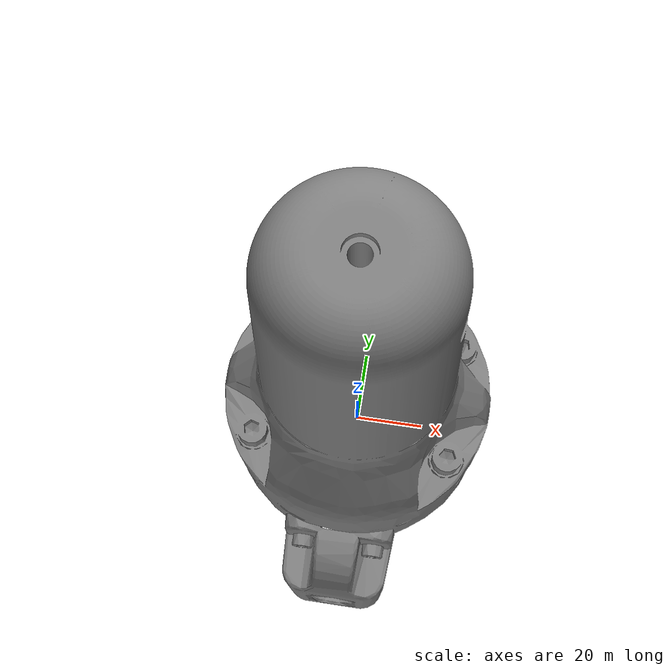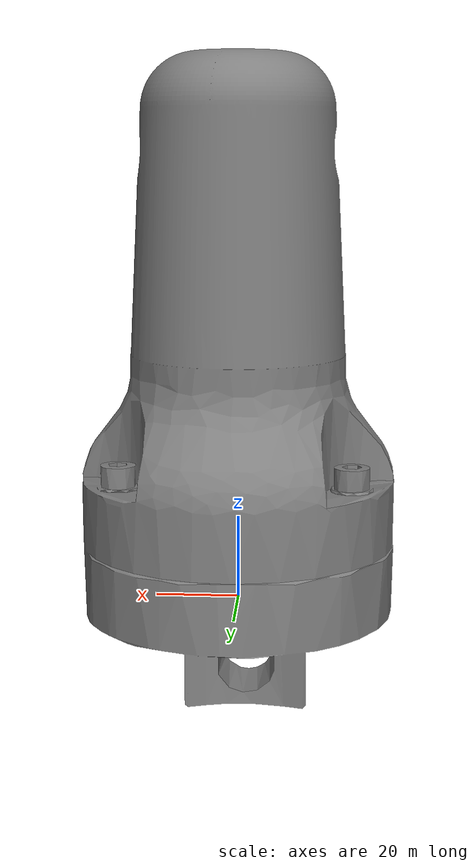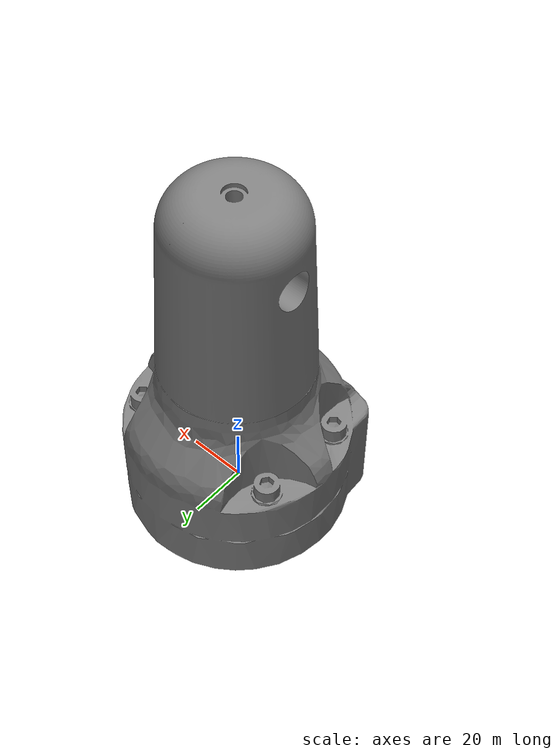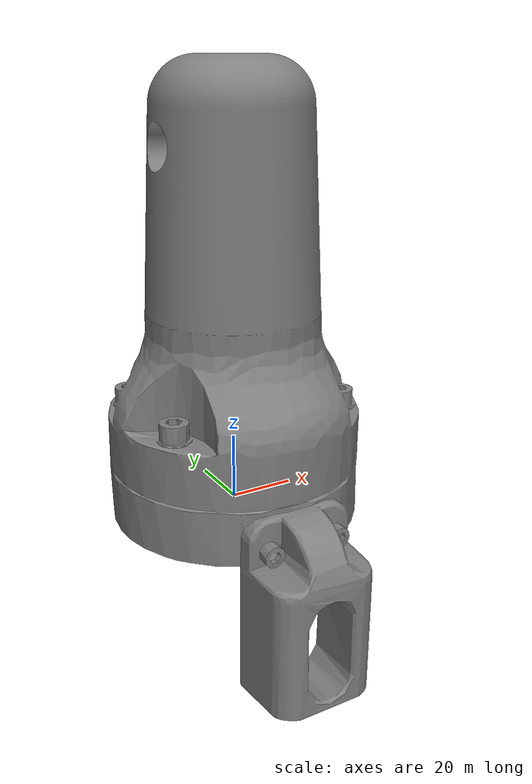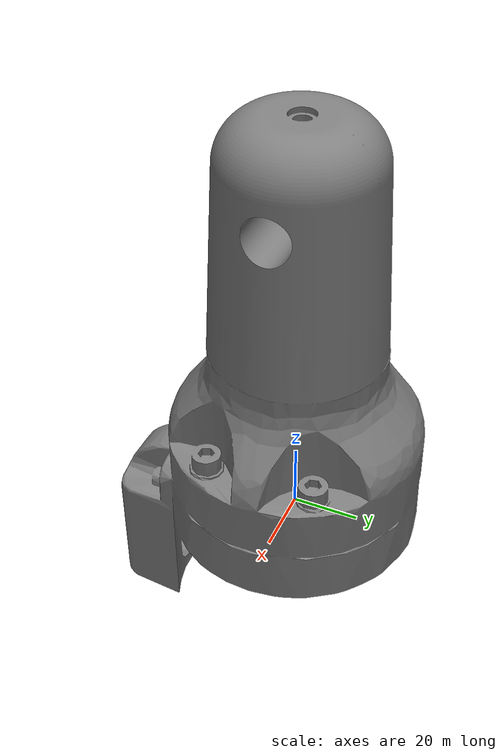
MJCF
<mujoco model="holder">
  <default>
    <default class="visual">
      <geom group="2" type="mesh" contype="0" conaffinity="0"/>
    </default>
    <default class="collision">
      <geom group="3" type="mesh"/>
    </default>
  </default>
  <asset>
    <mesh file="holder.obj"/>
    <mesh file="holder_collision_0.obj"/>
    <mesh file="holder_collision_1.obj"/>
    <mesh file="holder_collision_2.obj"/>
    <mesh file="holder_collision_3.obj"/>
    <mesh file="holder_collision_4.obj"/>
    <mesh file="holder_collision_5.obj"/>
    <mesh file="holder_collision_6.obj"/>
    <mesh file="holder_collision_7.obj"/>
    <mesh file="holder_collision_8.obj"/>
    <mesh file="holder_collision_9.obj"/>
    <mesh file="holder_collision_10.obj"/>
    <mesh file="holder_collision_11.obj"/>
    <mesh file="holder_collision_12.obj"/>
    <mesh file="holder_collision_13.obj"/>
    <mesh file="holder_collision_14.obj"/>
    <mesh file="holder_collision_15.obj"/>
    <mesh file="holder_collision_16.obj"/>
    <mesh file="holder_collision_17.obj"/>
    <mesh file="holder_collision_18.obj"/>
    <mesh file="holder_collision_19.obj"/>
    <mesh file="holder_collision_20.obj"/>
    <mesh file="holder_collision_21.obj"/>
    <mesh file="holder_collision_22.obj"/>
    <mesh file="holder_collision_23.obj"/>
    <mesh file="holder_collision_24.obj"/>
    <mesh file="holder_collision_25.obj"/>
    <mesh file="holder_collision_26.obj"/>
    <mesh file="holder_collision_27.obj"/>
    <mesh file="holder_collision_28.obj"/>
    <mesh file="holder_collision_29.obj"/>
    <mesh file="holder_collision_30.obj"/>
    <mesh file="holder_collision_31.obj"/>
    <mesh file="holder_collision_32.obj"/>
    <mesh file="holder_collision_33.obj"/>
    <mesh file="holder_collision_34.obj"/>
    <mesh file="holder_collision_35.obj"/>
    <mesh file="holder_collision_36.obj"/>
    <mesh file="holder_collision_37.obj"/>
    <mesh file="holder_collision_38.obj"/>
    <mesh file="holder_collision_39.obj"/>
    <mesh file="holder_collision_40.obj"/>
    <mesh file="holder_collision_41.obj"/>
    <mesh file="holder_collision_42.obj"/>
    <mesh file="holder_collision_43.obj"/>
    <mesh file="holder_collision_44.obj"/>
    <mesh file="holder_collision_45.obj"/>
    <mesh file="holder_collision_46.obj"/>
    <mesh file="holder_collision_47.obj"/>
    <mesh file="holder_collision_48.obj"/>
    <mesh file="holder_collision_49.obj"/>
    <mesh file="holder_collision_50.obj"/>
    <mesh file="holder_collision_51.obj"/>
    <mesh file="holder_collision_52.obj"/>
    <mesh file="holder_collision_53.obj"/>
    <mesh file="holder_collision_54.obj"/>
    <mesh file="holder_collision_55.obj"/>
    <mesh file="holder_collision_56.obj"/>
    <mesh file="holder_collision_57.obj"/>
    <mesh file="holder_collision_58.obj"/>
    <mesh file="holder_collision_59.obj"/>
    <mesh file="holder_collision_60.obj"/>
    <mesh file="holder_collision_61.obj"/>
    <mesh file="holder_collision_62.obj"/>
    <mesh file="holder_collision_63.obj"/>
    <mesh file="holder_collision_64.obj"/>
    <mesh file="holder_collision_65.obj"/>
    <mesh file="holder_collision_66.obj"/>
    <mesh file="holder_collision_67.obj"/>
    <mesh file="holder_collision_68.obj"/>
    <mesh file="holder_collision_69.obj"/>
    <mesh file="holder_collision_70.obj"/>
    <mesh file="holder_collision_71.obj"/>
    <mesh file="holder_collision_72.obj"/>
    <mesh file="holder_collision_73.obj"/>
    <mesh file="holder_collision_74.obj"/>
    <mesh file="holder_collision_75.obj"/>
    <mesh file="holder_collision_76.obj"/>
    <mesh file="holder_collision_77.obj"/>
    <mesh file="holder_collision_78.obj"/>
    <mesh file="holder_collision_79.obj"/>
    <mesh file="holder_collision_80.obj"/>
    <mesh file="holder_collision_81.obj"/>
    <mesh file="holder_collision_82.obj"/>
    <mesh file="holder_collision_83.obj"/>
    <mesh file="holder_collision_84.obj"/>
    <mesh file="holder_collision_85.obj"/>
    <mesh file="holder_collision_86.obj"/>
    <mesh file="holder_collision_87.obj"/>
    <mesh file="holder_collision_88.obj"/>
    <mesh file="holder_collision_89.obj"/>
    <mesh file="holder_collision_90.obj"/>
    <mesh file="holder_collision_91.obj"/>
    <mesh file="holder_collision_92.obj"/>
    <mesh file="holder_collision_93.obj"/>
    <mesh file="holder_collision_94.obj"/>
    <mesh file="holder_collision_95.obj"/>
    <mesh file="holder_collision_96.obj"/>
    <mesh file="holder_collision_97.obj"/>
    <mesh file="holder_collision_98.obj"/>
    <mesh file="holder_collision_99.obj"/>
    <mesh file="holder_collision_100.obj"/>
    <mesh file="holder_collision_101.obj"/>
    <mesh file="holder_collision_102.obj"/>
    <mesh file="holder_collision_103.obj"/>
    <mesh file="holder_collision_104.obj"/>
    <mesh file="holder_collision_105.obj"/>
    <mesh file="holder_collision_106.obj"/>
    <mesh file="holder_collision_107.obj"/>
    <mesh file="holder_collision_108.obj"/>
    <mesh file="holder_collision_109.obj"/>
    <mesh file="holder_collision_110.obj"/>
    <mesh file="holder_collision_111.obj"/>
    <mesh file="holder_collision_112.obj"/>
    <mesh file="holder_collision_113.obj"/>
    <mesh file="holder_collision_114.obj"/>
    <mesh file="holder_collision_115.obj"/>
    <mesh file="holder_collision_116.obj"/>
    <mesh file="holder_collision_117.obj"/>
    <mesh file="holder_collision_118.obj"/>
    <mesh file="holder_collision_119.obj"/>
    <mesh file="holder_collision_120.obj"/>
    <mesh file="holder_collision_121.obj"/>
    <mesh file="holder_collision_122.obj"/>
    <mesh file="holder_collision_123.obj"/>
    <mesh file="holder_collision_124.obj"/>
    <mesh file="holder_collision_125.obj"/>
    <mesh file="holder_collision_126.obj"/>
    <mesh file="holder_collision_127.obj"/>
    <mesh file="holder_collision_128.obj"/>
    <mesh file="holder_collision_129.obj"/>
    <mesh file="holder_collision_130.obj"/>
    <mesh file="holder_collision_131.obj"/>
    <mesh file="holder_collision_132.obj"/>
    <mesh file="holder_collision_133.obj"/>
    <mesh file="holder_collision_134.obj"/>
    <mesh file="holder_collision_135.obj"/>
    <mesh file="holder_collision_136.obj"/>
    <mesh file="holder_collision_137.obj"/>
    <mesh file="holder_collision_138.obj"/>
    <mesh file="holder_collision_139.obj"/>
    <mesh file="holder_collision_140.obj"/>
    <mesh file="holder_collision_141.obj"/>
    <mesh file="holder_collision_142.obj"/>
    <mesh file="holder_collision_143.obj"/>
    <mesh file="holder_collision_144.obj"/>
    <mesh file="holder_collision_145.obj"/>
    <mesh file="holder_collision_146.obj"/>
  </asset>
  <worldbody>
    <body name="holder">
      <geom mesh="holder" class="visual"/>
      <geom mesh="holder_collision_0" rgba="0.9339782848675405 0.12709095613723898 0.7119345025486067 1" class="collision"/>
      <geom mesh="holder_collision_1" rgba="0.316414725344241 0.5057956580910649 0.10700339626405586 1" class="collision"/>
      <geom mesh="holder_collision_2" rgba="0.0005544586052781408 0.911610629843216 0.032379903216019024 1" class="collision"/>
      <geom mesh="holder_collision_3" rgba="0.49505799505723025 0.9542301545849325 0.39807618094186126 1" class="collision"/>
      <geom mesh="holder_collision_4" rgba="0.23930554614025235 0.07074047233602909 0.047257611779816355 1" class="collision"/>
      <geom mesh="holder_collision_5" rgba="0.5960596788935322 0.431515327866162 0.08756464070951242 1" class="collision"/>
      <geom mesh="holder_collision_6" rgba="0.824102713155842 0.06364555362680502 0.9088249098708153 1" class="collision"/>
      <geom mesh="holder_collision_7" rgba="0.5534314769573778 0.7811071358208691 0.07152026337940576 1" class="collision"/>
      <geom mesh="holder_collision_8" rgba="0.07073224775928133 0.7584383871457824 0.7465311505186653 1" class="collision"/>
      <geom mesh="holder_collision_9" rgba="0.19452895711224905 0.8934001159256417 0.8145299349871797 1" class="collision"/>
      <geom mesh="holder_collision_10" rgba="0.2821803791424805 0.4564576008017647 0.23874526813266506 1" class="collision"/>
      <geom mesh="holder_collision_11" rgba="0.7067418799413772 0.39413546810233924 0.8914317882963049 1" class="collision"/>
      <geom mesh="holder_collision_12" rgba="0.5185457153225472 0.14856368134497044 0.29709544643839003 1" class="collision"/>
      <geom mesh="holder_collision_13" rgba="0.9947778669725169 0.9423003835406578 0.6028024425744007 1" class="collision"/>
      <geom mesh="holder_collision_14" rgba="0.7978467066613 0.8166339520689133 0.7818759239548929 1" class="collision"/>
      <geom mesh="holder_collision_15" rgba="0.860600812324967 0.42659897231798327 0.5757432924880054 1" class="collision"/>
      <geom mesh="holder_collision_16" rgba="0.17081884650885193 0.09333937181042806 0.22616338175167083 1" class="collision"/>
      <geom mesh="holder_collision_17" rgba="0.6713963569554547 0.5566450804183791 0.895442482341357 1" class="collision"/>
      <geom mesh="holder_collision_18" rgba="0.12400098147839478 0.7911450778909273 0.782863024237764 1" class="collision"/>
      <geom mesh="holder_collision_19" rgba="0.3625596600520734 0.5394807231194084 0.4238430506477875 1" class="collision"/>
      <geom mesh="holder_collision_20" rgba="0.8259676058745588 0.750649310937465 0.685091803173912 1" class="collision"/>
      <geom mesh="holder_collision_21" rgba="0.15086859668116503 0.05917375000239389 0.878489964724324 1" class="collision"/>
      <geom mesh="holder_collision_22" rgba="0.2536611716557893 0.2511795092685556 0.6071408052565929 1" class="collision"/>
      <geom mesh="holder_collision_23" rgba="0.46427078561260315 0.17052704543138397 0.649595830892946 1" class="collision"/>
      <geom mesh="holder_collision_24" rgba="0.9137160536128611 0.7482303484487215 0.12842756943949396 1" class="collision"/>
      <geom mesh="holder_collision_25" rgba="0.5993249251837219 0.3466113096386707 0.5515010650338018 1" class="collision"/>
      <geom mesh="holder_collision_26" rgba="0.13222457380931407 0.11215995754482067 0.17439717095854568 1" class="collision"/>
      <geom mesh="holder_collision_27" rgba="0.12186285694465004 0.09986016541017195 0.05293280359675889 1" class="collision"/>
      <geom mesh="holder_collision_28" rgba="0.07345106257553269 0.7396461752845219 0.2219325615942317 1" class="collision"/>
      <geom mesh="holder_collision_29" rgba="0.5092564272456156 0.919136848542408 0.8923067413302985 1" class="collision"/>
      <geom mesh="holder_collision_30" rgba="0.21124968568834468 0.3436758471351611 0.38366492587287726 1" class="collision"/>
      <geom mesh="holder_collision_31" rgba="0.8920463120303379 0.5671893993862398 0.751538961082997 1" class="collision"/>
      <geom mesh="holder_collision_32" rgba="0.06794716439154258 0.3772495485495402 0.6784429778060913 1" class="collision"/>
      <geom mesh="holder_collision_33" rgba="0.02412521706353077 0.785234067499329 0.6805103279267339 1" class="collision"/>
      <geom mesh="holder_collision_34" rgba="0.5807789988415014 0.7352848212699125 0.09521111133566185 1" class="collision"/>
      <geom mesh="holder_collision_35" rgba="0.31006311061359093 0.339244225109001 0.8364790162238522 1" class="collision"/>
      <geom mesh="holder_collision_36" rgba="0.03549899185078276 0.34456936937389704 0.06680956064354526 1" class="collision"/>
      <geom mesh="holder_collision_37" rgba="0.23520719814247137 0.05177172570389377 0.6359947598154756 1" class="collision"/>
      <geom mesh="holder_collision_38" rgba="0.15424789290044216 0.2886655807037666 0.24088100223777686 1" class="collision"/>
      <geom mesh="holder_collision_39" rgba="0.9551253999810182 0.6621283620022685 0.3578548360222845 1" class="collision"/>
      <geom mesh="holder_collision_40" rgba="0.26138902686007626 0.05941361549195179 0.6076505598655813 1" class="collision"/>
      <geom mesh="holder_collision_41" rgba="0.021951079944816154 0.19977035688996192 0.6180578211231175 1" class="collision"/>
      <geom mesh="holder_collision_42" rgba="0.42055528781588347 0.6234228727622908 0.3922357653616455 1" class="collision"/>
      <geom mesh="holder_collision_43" rgba="0.04395202407107923 0.5835145368110288 0.6753291261861286 1" class="collision"/>
      <geom mesh="holder_collision_44" rgba="0.6277972587672248 0.6485715954117144 0.43372304814281126 1" class="collision"/>
      <geom mesh="holder_collision_45" rgba="0.9725088979075407 0.8131209809412714 0.9585075148259968 1" class="collision"/>
      <geom mesh="holder_collision_46" rgba="0.34577836557151675 0.30980298615559543 0.982610442973323 1" class="collision"/>
      <geom mesh="holder_collision_47" rgba="0.1179334250526205 0.4805332203756053 0.16650556780496506 1" class="collision"/>
      <geom mesh="holder_collision_48" rgba="0.38497205944473056 0.5451173480747716 0.7092733068444677 1" class="collision"/>
      <geom mesh="holder_collision_49" rgba="0.9450537413131543 0.5452278161388953 0.8040328227055228 1" class="collision"/>
      <geom mesh="holder_collision_50" rgba="0.33852255769063744 0.4569408197595348 0.8699983474625423 1" class="collision"/>
      <geom mesh="holder_collision_51" rgba="0.7317018075820881 0.7741820699534938 0.5386775695942604 1" class="collision"/>
      <geom mesh="holder_collision_52" rgba="0.08719001196954701 0.6610772868306564 0.7720998954421563 1" class="collision"/>
      <geom mesh="holder_collision_53" rgba="0.8410367461522757 0.9206184169158583 0.27213611864383436 1" class="collision"/>
      <geom mesh="holder_collision_54" rgba="0.39789692033775126 0.407689807834978 0.48097094005799346 1" class="collision"/>
      <geom mesh="holder_collision_55" rgba="0.07730051738899435 0.36511049007219964 0.5708741014538183 1" class="collision"/>
      <geom mesh="holder_collision_56" rgba="0.08671513150968546 0.4455159020669114 0.2586957523074931 1" class="collision"/>
      <geom mesh="holder_collision_57" rgba="0.5453943855975043 0.03309460985658663 0.4625925333458981 1" class="collision"/>
      <geom mesh="holder_collision_58" rgba="0.19251689322724141 0.4258580096344562 0.05250671912091931 1" class="collision"/>
      <geom mesh="holder_collision_59" rgba="0.1578848152131641 0.5388630589316692 0.31038401721140874 1" class="collision"/>
      <geom mesh="holder_collision_60" rgba="0.20454341368286144 0.09608902276222553 0.2752259556541562 1" class="collision"/>
      <geom mesh="holder_collision_61" rgba="0.40120934341485714 0.46033970420858494 0.12277692014743358 1" class="collision"/>
      <geom mesh="holder_collision_62" rgba="0.21900118921303324 0.9019522665272124 0.3020547471643593 1" class="collision"/>
      <geom mesh="holder_collision_63" rgba="0.34482769505863275 0.07703643152547857 0.7937472267160673 1" class="collision"/>
      <geom mesh="holder_collision_64" rgba="0.41042901957280786 0.6131266719558314 0.34308197713735245 1" class="collision"/>
      <geom mesh="holder_collision_65" rgba="0.43481158577743984 0.9561468732915706 0.5697395381292092 1" class="collision"/>
      <geom mesh="holder_collision_66" rgba="0.5192366326432886 0.38908256889479154 0.36714086948056956 1" class="collision"/>
      <geom mesh="holder_collision_67" rgba="0.5093706294797956 0.09374861722738304 0.20208063548740163 1" class="collision"/>
      <geom mesh="holder_collision_68" rgba="0.4607251322352568 0.008979886620080979 0.9140275374924594 1" class="collision"/>
      <geom mesh="holder_collision_69" rgba="0.9573033626395553 0.5174547619306352 0.028197662180076466 1" class="collision"/>
      <geom mesh="holder_collision_70" rgba="0.5003739672609107 0.34614899510158115 0.8273937142703527 1" class="collision"/>
      <geom mesh="holder_collision_71" rgba="0.1776437353317627 0.04013580491778734 0.5247437164878694 1" class="collision"/>
      <geom mesh="holder_collision_72" rgba="0.39934308906656957 0.7323002727896915 0.7736140156204095 1" class="collision"/>
      <geom mesh="holder_collision_73" rgba="0.11989042539366557 0.9818471400137597 0.04130937969682291 1" class="collision"/>
      <geom mesh="holder_collision_74" rgba="0.0459473356190393 0.9667108112421845 0.00337579128395471 1" class="collision"/>
      <geom mesh="holder_collision_75" rgba="0.7493615078727608 0.4656603218162171 0.5203714368339527 1" class="collision"/>
      <geom mesh="holder_collision_76" rgba="0.4737980483272082 0.23848170778488564 0.32296357891880334 1" class="collision"/>
      <geom mesh="holder_collision_77" rgba="0.7362151897425617 0.6160298549967611 0.9873959671185942 1" class="collision"/>
      <geom mesh="holder_collision_78" rgba="0.7378104268951577 0.4395138500686083 0.6159382354635009 1" class="collision"/>
      <geom mesh="holder_collision_79" rgba="0.525251325054571 0.356341674968246 0.8170776954064535 1" class="collision"/>
      <geom mesh="holder_collision_80" rgba="0.9068672818644566 0.9302276235729896 0.5000599274317064 1" class="collision"/>
      <geom mesh="holder_collision_81" rgba="0.39081368340908273 0.4192047394574048 0.516351655355947 1" class="collision"/>
      <geom mesh="holder_collision_82" rgba="0.10894171080773707 0.13775659974294197 0.5654142657186048 1" class="collision"/>
      <geom mesh="holder_collision_83" rgba="0.8210850846690654 0.567465339386974 0.06287860234967169 1" class="collision"/>
      <geom mesh="holder_collision_84" rgba="0.019991735712273973 0.5866119371901619 0.7355209153936002 1" class="collision"/>
      <geom mesh="holder_collision_85" rgba="0.2578806426961243 0.7520920531931906 0.45338131978561 1" class="collision"/>
      <geom mesh="holder_collision_86" rgba="0.7354773419977554 0.7146382236281424 0.6445909572895456 1" class="collision"/>
      <geom mesh="holder_collision_87" rgba="0.8330501209618059 0.6318020275245381 0.23767251320517524 1" class="collision"/>
      <geom mesh="holder_collision_88" rgba="0.08175883181079546 0.2823688974048518 0.4651087301055562 1" class="collision"/>
      <geom mesh="holder_collision_89" rgba="0.6514347733101027 0.9336604328674516 0.9916063667103853 1" class="collision"/>
      <geom mesh="holder_collision_90" rgba="0.7263480892733523 0.04329470816593406 0.4770967801733307 1" class="collision"/>
      <geom mesh="holder_collision_91" rgba="0.798239997612403 0.18380386930718773 0.4986908269766487 1" class="collision"/>
      <geom mesh="holder_collision_92" rgba="0.8529000969568498 0.7123594933484009 0.6586764645888239 1" class="collision"/>
      <geom mesh="holder_collision_93" rgba="0.5260019705747254 0.3534072421366313 0.059336151298796325 1" class="collision"/>
      <geom mesh="holder_collision_94" rgba="0.9337975234638025 0.38765434892305084 0.6851025551024058 1" class="collision"/>
      <geom mesh="holder_collision_95" rgba="0.0942241830423941 0.6796339130514804 0.5997726203417765 1" class="collision"/>
      <geom mesh="holder_collision_96" rgba="0.27850139693119313 0.2814062021690029 0.6759684522124332 1" class="collision"/>
      <geom mesh="holder_collision_97" rgba="0.7031846050983607 0.3948950391860595 0.26911599893214133 1" class="collision"/>
      <geom mesh="holder_collision_98" rgba="0.19257398612673526 0.4621481310649038 0.5653181343374193 1" class="collision"/>
      <geom mesh="holder_collision_99" rgba="0.40938512106851643 0.3461796319011927 0.6740158604736814 1" class="collision"/>
      <geom mesh="holder_collision_100" rgba="0.4420195289434028 0.6365225922172382 0.3006765191351891 1" class="collision"/>
      <geom mesh="holder_collision_101" rgba="0.8415683603131883 0.6225515288911321 0.9801836944417898 1" class="collision"/>
      <geom mesh="holder_collision_102" rgba="0.3920047253598222 0.9357384513685887 0.8728527234454365 1" class="collision"/>
      <geom mesh="holder_collision_103" rgba="0.6955136244166609 0.7945095505908598 0.3482479981781589 1" class="collision"/>
      <geom mesh="holder_collision_104" rgba="0.2943842337427428 0.32489711888809514 0.9288964990578713 1" class="collision"/>
      <geom mesh="holder_collision_105" rgba="0.5444149651137086 0.6135480279437705 0.6028337465976331 1" class="collision"/>
      <geom mesh="holder_collision_106" rgba="0.8913606870392184 0.9967554988456419 0.36384030890763286 1" class="collision"/>
      <geom mesh="holder_collision_107" rgba="0.5941593084820371 0.478384497535171 0.4288090500734152 1" class="collision"/>
      <geom mesh="holder_collision_108" rgba="0.5682672596352543 0.11792193851834876 0.6466611920947127 1" class="collision"/>
      <geom mesh="holder_collision_109" rgba="0.37569919452874023 0.2711623982789183 0.21776536685294845 1" class="collision"/>
      <geom mesh="holder_collision_110" rgba="0.5166685393571844 0.777707729155887 0.8970187147531258 1" class="collision"/>
      <geom mesh="holder_collision_111" rgba="0.537721845043964 0.8573804316735965 0.5233699916503869 1" class="collision"/>
      <geom mesh="holder_collision_112" rgba="0.07084076747364254 0.7586493858927973 0.646738094986915 1" class="collision"/>
      <geom mesh="holder_collision_113" rgba="0.12519357848884893 0.00648313977733872 0.04733961376618823 1" class="collision"/>
      <geom mesh="holder_collision_114" rgba="0.4339391713757349 0.4763250921341745 0.02932325383401746 1" class="collision"/>
      <geom mesh="holder_collision_115" rgba="0.5773195782017857 0.6807369513349428 0.6641835466934125 1" class="collision"/>
      <geom mesh="holder_collision_116" rgba="0.6947084023640074 0.37729868449964543 0.6346693396820778 1" class="collision"/>
      <geom mesh="holder_collision_117" rgba="0.011431144696438023 0.33623268926185457 0.8372451457217851 1" class="collision"/>
      <geom mesh="holder_collision_118" rgba="0.3700120346854676 0.0844146611156037 0.07919293210701439 1" class="collision"/>
      <geom mesh="holder_collision_119" rgba="0.08061110723783693 0.4106076071079773 0.2771626158082411 1" class="collision"/>
      <geom mesh="holder_collision_120" rgba="0.38309023250306007 0.5254714528151275 0.0380237364860625 1" class="collision"/>
      <geom mesh="holder_collision_121" rgba="0.6076865760124731 0.36774777465562947 0.39825762706508794 1" class="collision"/>
      <geom mesh="holder_collision_122" rgba="0.6217129561606083 0.22857309345406074 0.5776782937162895 1" class="collision"/>
      <geom mesh="holder_collision_123" rgba="0.1772644142488834 0.582138106478627 0.3826738852609016 1" class="collision"/>
      <geom mesh="holder_collision_124" rgba="0.5422640398751957 0.6971314137348255 0.8979753721333237 1" class="collision"/>
      <geom mesh="holder_collision_125" rgba="0.3942075278867613 0.24158411368657284 0.6758277122487605 1" class="collision"/>
      <geom mesh="holder_collision_126" rgba="0.911044247786551 0.998882637932493 0.8272670615071467 1" class="collision"/>
      <geom mesh="holder_collision_127" rgba="0.5634652229517694 0.786351054364352 0.007763447441787474 1" class="collision"/>
      <geom mesh="holder_collision_128" rgba="0.09744948630908434 0.6326203184276197 0.1275574941645713 1" class="collision"/>
      <geom mesh="holder_collision_129" rgba="0.027560804929207428 0.010578626013880488 0.9182037650967836 1" class="collision"/>
      <geom mesh="holder_collision_130" rgba="0.02964518496601476 0.5775544985184909 0.8213949966960815 1" class="collision"/>
      <geom mesh="holder_collision_131" rgba="0.28592135417664033 0.8378091044941254 0.5181390335914934 1" class="collision"/>
      <geom mesh="holder_collision_132" rgba="0.48581388144326465 0.6375747767244421 0.2721196972179175 1" class="collision"/>
      <geom mesh="holder_collision_133" rgba="0.8863599521285264 0.4680026008027175 0.016839679331492885 1" class="collision"/>
      <geom mesh="holder_collision_134" rgba="0.6653686369299672 0.6124520912648942 0.9916344789965555 1" class="collision"/>
      <geom mesh="holder_collision_135" rgba="0.9304807736722073 0.37223983185433696 0.248836165623198 1" class="collision"/>
      <geom mesh="holder_collision_136" rgba="0.2047302144527232 0.7270249578631559 0.708981201782995 1" class="collision"/>
      <geom mesh="holder_collision_137" rgba="0.003456480390470529 0.15040140026180404 0.6989502727880744 1" class="collision"/>
      <geom mesh="holder_collision_138" rgba="0.17848745975307834 0.6996772843252427 0.9286194979675986 1" class="collision"/>
      <geom mesh="holder_collision_139" rgba="0.26021217301683275 0.1928106719083127 0.01689934910988089 1" class="collision"/>
      <geom mesh="holder_collision_140" rgba="0.08096319358692816 0.7808282303213236 0.36828762517163205 1" class="collision"/>
      <geom mesh="holder_collision_141" rgba="0.18860373257363694 0.29307496123816745 0.14272050444197448 1" class="collision"/>
      <geom mesh="holder_collision_142" rgba="0.7834592157306165 0.3302927209505795 0.255316572165438 1" class="collision"/>
      <geom mesh="holder_collision_143" rgba="0.7302123731126448 0.5180507114666603 0.7078098851605776 1" class="collision"/>
      <geom mesh="holder_collision_144" rgba="0.3339760458454163 0.5140523646772426 0.8133614289679468 1" class="collision"/>
      <geom mesh="holder_collision_145" rgba="0.9147663917498842 0.44301289753674256 0.4667320445324692 1" class="collision"/>
      <geom mesh="holder_collision_146" rgba="0.8540927818085148 0.16108534555891652 0.0336829043960708 1" class="collision"/>
    </body>
  </worldbody>
</mujoco>
